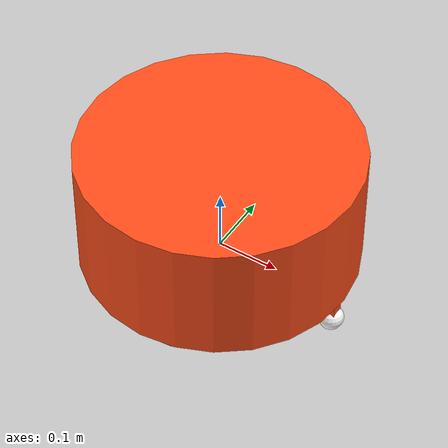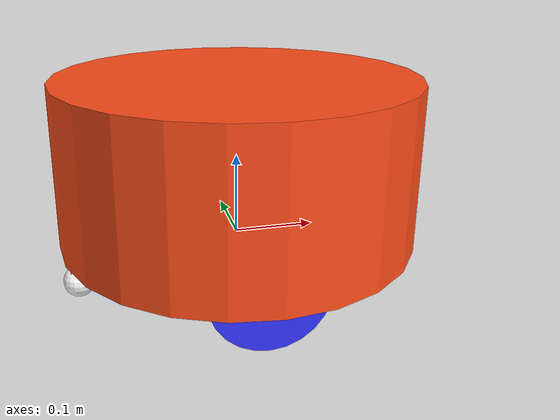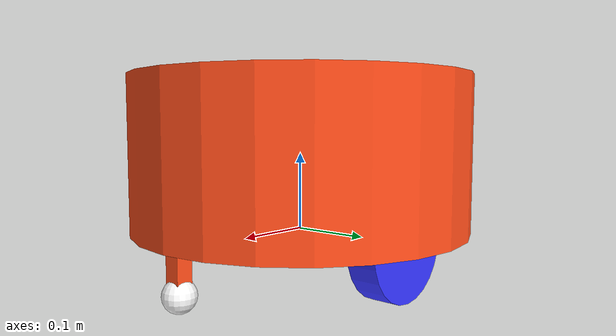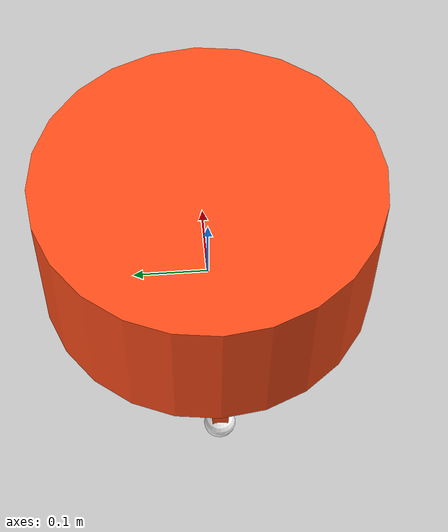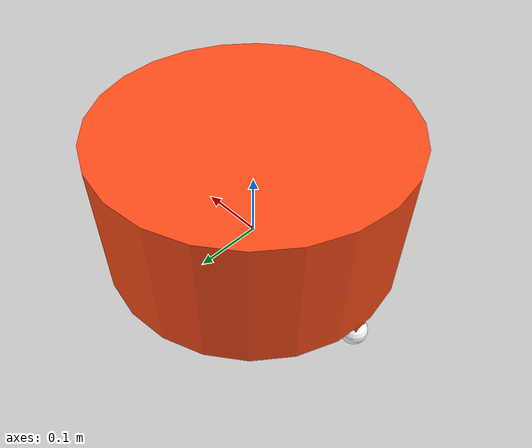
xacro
<?xml version="1.0"?>
<robot xmlns:xacro="http://www.ros.org/wiki/xacro" >

    <xacro:include filename="inertial_macros.xacro"/>

    <xacro:property name="chassis_length" value="0.44"/>
    <xacro:property name="chassis_height" value="0.2"/>
    <xacro:property name="chassis_mass" value="20.0"/>
    <xacro:property name="wheel_radius" value="0.07"/>
    <xacro:property name="wheel_thickness" value="0.037"/>
    <xacro:property name="wheel_mass" value="0.05"/>
    <xacro:property name="wheel_offset_x" value="0"/>
    <xacro:property name="wheel_offset_y" value="0.1485"/>
    <xacro:property name="wheel_offset_z" value="0.01"/>.
    <xacro:property name="caster_wheel_radius" value="0.02"/>
    <xacro:property name="caster_wheel_mass" value="0.01"/>
    <xacro:property name="connector_size" value="0.02"/>
    <xacro:property name="connector_height" value="0.075"/>
    <xacro:property name="connector_offset_z" value="-0.02"/>
    <xacro:property name="caster_wheel_offset_x" value="0.1"/>
    <xacro:property name="caster_wheel_offset_z" value="${wheel_offset_z - wheel_radius + caster_wheel_radius + 0.0115}"/>

    <material name="white">
        <color rgba="1 1 1 1" />
    </material>

    <material name="orange">
        <color rgba="1 0.3 0.1 1"/>
    </material>

    <material name="blue">
        <color rgba="0.2 0.2 1 1"/>
    </material>

    <material name="black">
        <color rgba="0 0 0 1"/>
    </material>

    <material name="red">
        <color rgba="1 0 0 1"/>
    </material>

    <!-- BASE LINK -->

    <link name="base_link">

    </link>

    <!-- BASE_FOOTPRINT LINK -->

    <joint name="base_footprint_joint" type="fixed">
        <parent link="base_link"/>
        <child link="base_footprint"/>
        <origin xyz="0 0 0" rpy="0 0 0"/>
    </joint>

    <link name="base_footprint">
    </link>

    <!-- CHASSIS LINK -->

    <joint name="chassis_joint" type="fixed">
        <parent link="base_link"/>
        <child link="chassis"/>
        <origin xyz="0 0 0"/>
    </joint>

    <link name="chassis">
        <visual>
            <origin xyz="0 0 ${chassis_height/2}"/>
            <geometry>
                <cylinder radius="${chassis_length/2}" length="${chassis_height}"/>
            </geometry>
            <material name="orange"/>
        </visual>
        <collision>
            <origin xyz="0 0 ${chassis_height/2}"/>
            <geometry>
                <cylinder radius="${chassis_length/2}" length="${chassis_height}"/>
            </geometry>
        </collision>
         <xacro:inertial_cylinder mass="0.5" length="${chassis_height}" radius="${chassis_length/2}">
            <origin xyz="0 0 ${chassis_height/2}" rpy="0 0 0"/>
        </xacro:inertial_cylinder>
    </link>

    <gazebo reference="chassis">
        <material>Gazebo/Orange</material>
    </gazebo>

    <!-- LEFT WHEEL LINK -->

    <joint name="left_wheel_joint" type="continuous">
        <parent link="base_link"/>
        <child link="left_wheel"/>
        <origin xyz="0 ${wheel_offset_y} 0" rpy="-${pi/2} 0 0" />
        <axis xyz="0 0 1"/>
    </joint>

    <link name="left_wheel">
        <visual>
            <geometry>
                <cylinder radius="${wheel_radius}" length="${wheel_thickness}"/>
            </geometry>
            <material name="blue"/>
        </visual>
        <collision>
            <geometry>
                <sphere radius="${wheel_radius}"/>
            </geometry>
        </collision>
        <xacro:inertial_cylinder mass="${wheel_mass}" length="${wheel_thickness}" radius="${wheel_radius}">
            <origin xyz="0 0 0" rpy="0 0 0"/>
        </xacro:inertial_cylinder>
    </link>

    <gazebo reference="left_wheel">
        <material>Gazebo/Blue</material>
    </gazebo>

    <!-- RIGHT WHEEL LINK -->

    <joint name="right_wheel_joint" type="continuous">
        <parent link="base_link"/>
        <child link="right_wheel"/>
        <origin xyz="0 ${-wheel_offset_y} 0" rpy="${pi/2} 0 0" />
        <axis xyz="0 0 -1"/>
    </joint>

    <link name="right_wheel">
        <visual>
            <geometry>
                <cylinder radius="${wheel_radius}" length="${wheel_thickness}"/>
            </geometry>
            <material name="blue"/>
        </visual>
        <collision>
            <geometry>
                <sphere radius="${wheel_radius}"/>
            </geometry>
        </collision>
        <xacro:inertial_cylinder mass="${wheel_mass}" length="${wheel_thickness}" radius="${wheel_radius}">
            <origin xyz="0 0 0" rpy="0 0 0"/>
        </xacro:inertial_cylinder>
    </link>

    <gazebo reference="right_wheel">
        <material>Gazebo/Blue</material>
    </gazebo>

    <!-- CASTER FRONT WHEEL LINK -->

    <joint name="front_connector_joint" type="fixed">
        <parent link="chassis"/>
        <child link="front_connector"/>
        <origin xyz="${caster_wheel_offset_x} 0 ${connector_offset_z}" rpy="0 0 0" />
    </joint>

    <link name="front_connector">
        <visual>
            <origin xyz="${caster_wheel_offset_x} 0 0"/>
            <geometry>
                <box size="${connector_size} ${connector_size} ${connector_height}"/>
            </geometry>
            <material name="orange"/>
        </visual>
        <collision>
            <origin xyz="${caster_wheel_offset_x} 0 0"/>
            <geometry>
                <box size="${connector_size} ${connector_size} ${connector_height}"/>
            </geometry>
        </collision>
        <xacro:inertial_box mass="0.1" x="${connector_size}" y="${connector_size}" z="${connector_height}">
            <origin xyz="${caster_wheel_offset_x} 0 0" rpy="0 0 0"/>
        </xacro:inertial_box>
    </link>

    <gazebo reference="front_connector">
        <material>Gazebo/Orange</material>
    </gazebo>

    <joint name="caster_front_wheel_joint" type="fixed">
        <parent link="front_connector"/>
        <child link="caster_front_wheel"/>
        <origin xyz="${caster_wheel_offset_x} 0 ${caster_wheel_offset_z}"/>
    </joint>

    <link name="caster_front_wheel">
        <visual>
            <geometry>
                <sphere radius="${caster_wheel_radius}"/>
            </geometry>
            <material name="white"/>
        </visual>
        <collision>
            <geometry>
                <sphere radius="${caster_wheel_radius}"/>
            </geometry>
        </collision>
        <xacro:inertial_sphere mass="${caster_wheel_mass}" radius="${caster_wheel_radius}">
            <origin xyz="0 0 0" rpy="0 0 0"/>
        </xacro:inertial_sphere>
    </link>

    <gazebo reference="caster_front_wheel">
        <material>Gazebo/White</material>
        <mu1 value="0.001"/>
        <mu2 value="0.001"/>
    </gazebo>

    <!-- CASTER BACK WHEEL LINK -->

    <joint name="back_connector_joint" type="fixed">
        <parent link="chassis"/>
        <child link="back_connector"/>
        <origin xyz="${-caster_wheel_offset_x} 0 ${connector_offset_z}" rpy="0 0 0" />
    </joint>

    <link name="back_connector">
        <visual>
            <origin xyz="${-caster_wheel_offset_x} 0 0"/>
            <geometry>
                <box size="${connector_size} ${connector_size} ${connector_height}"/>
            </geometry>
            <material name="orange"/>
        </visual>
        <collision>
            <origin xyz="${-caster_wheel_offset_x} 0 0"/>
            <geometry>
                <box size="${connector_size} ${connector_size} ${connector_height}"/>
            </geometry>
        </collision>
        <xacro:inertial_box mass="0.1" x="${connector_size}" y="${connector_size}" z="${connector_height}">
            <origin xyz="${-caster_wheel_offset_x} 0 0" rpy="0 0 0"/>
        </xacro:inertial_box>
    </link>

    <gazebo reference="back_connector">
        <material>Gazebo/Orange</material>
    </gazebo>

    <joint name="caster_back_wheel_joint" type="fixed">
        <parent link="back_connector"/>
        <child link="caster_back_wheel"/>
        <origin xyz="${-caster_wheel_offset_x} 0 ${caster_wheel_offset_z}"/>
    </joint>

    <link name="caster_back_wheel">
        <visual>
            <geometry>
                <sphere radius="${caster_wheel_radius}"/>
            </geometry>
            <material name="white"/>
        </visual>
        <collision>
            <geometry>
                <sphere radius="${caster_wheel_radius}"/>
            </geometry>
        </collision>
        <xacro:inertial_sphere mass="${caster_wheel_mass}" radius="${caster_wheel_radius}">
            <origin xyz="0 0 0" rpy="0 0 0"/>
        </xacro:inertial_sphere>
    </link>

    <gazebo reference="caster_back_wheel">
        <material>Gazebo/White</material>
        <mu1 value="0.001"/>
        <mu2 value="0.001"/>
    </gazebo>
</robot>
